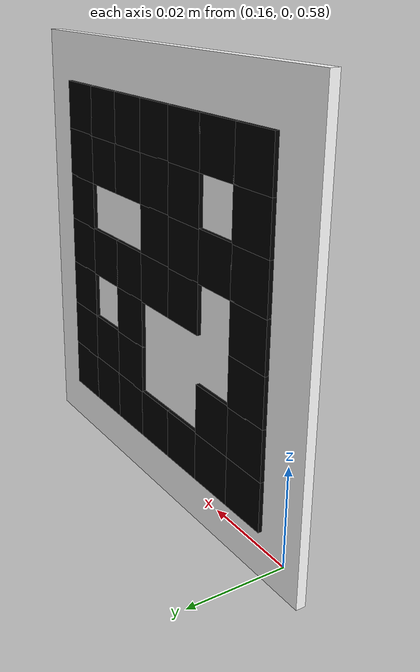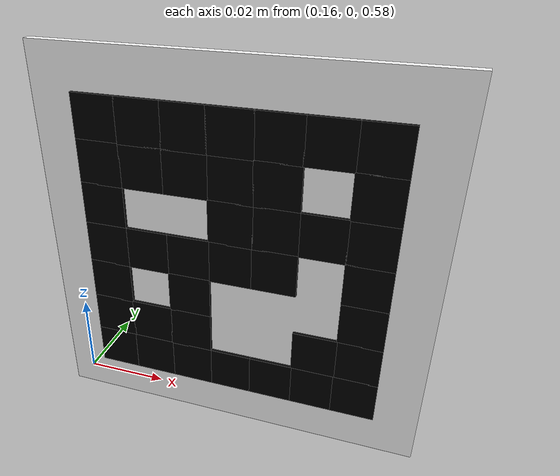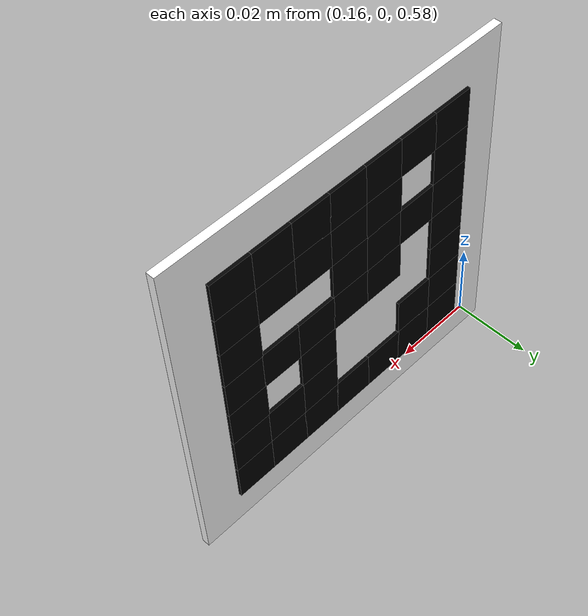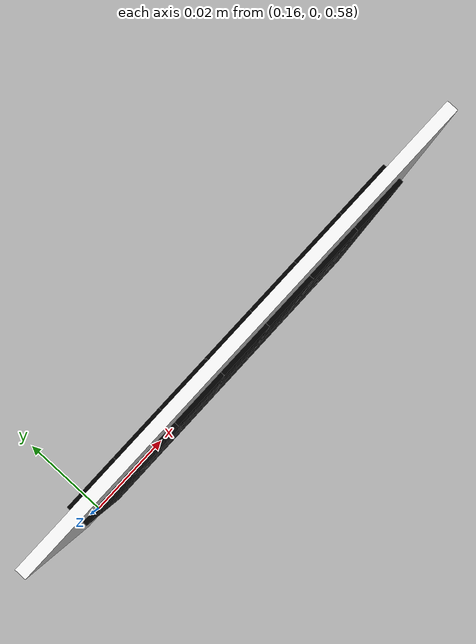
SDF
<sdf version="1.6">
  <world name="calibration">
    <include>
      <uri>model://sun</uri>
    </include>
    <include>
      <uri>model://ground_plane</uri>
    </include>
    <!-- ArUco marker: DICT_5X5_250 id=1, 90x90 mm, placed 20 cm in front of arm_mount_link at camera height -->
    <include>
      <name>aruco_marker</name>
      <pose>0.20 0 0.62 0 0 0</pose>
      <uri>model://aruco_marker</uri>
    </include>
  </world>
</sdf>

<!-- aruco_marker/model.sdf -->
<sdf version="1.6">
  <model name="aruco_5x5_250_id1">
    <static>true</static>
    <link name="board">
      <!-- DICT_5X5_250 marker id=1, borderBits=1. Rendered as geometry so Gazebo does not depend on texture/material loading. -->
      <!-- Back-side cells are mirrored in X so cameras viewing the rear face still see the canonical marker, not a mirror image. -->
      <collision name="collision">
        <geometry>
          <box>
            <size>0.09 0.002 0.09</size>
          </box>
        </geometry>
      </collision>

      <visual name="white_backing">
        <geometry>
          <box>
            <size>0.09 0.002 0.09</size>
          </box>
        </geometry>
        <material>
          <ambient>1 1 1 1</ambient>
          <diffuse>1 1 1 1</diffuse>
          <specular>0.1 0.1 0.1 1</specular>
        </material>
      </visual>

      <visual name="front_black_r0_c0">
        <pose>-0.0300 -0.0016 0.0300 0 0 0</pose>
        <geometry>
          <box>
            <size>0.0102 0.0008 0.0102</size>
          </box>
        </geometry>
        <material>
          <ambient>0 0 0 1</ambient>
          <diffuse>0 0 0 1</diffuse>
          <specular>0 0 0 1</specular>
        </material>
      </visual>
      <visual name="back_black_r0_c0_mirrored">
        <pose>0.0300 0.0016 0.0300 0 0 0</pose>
        <geometry>
          <box>
            <size>0.0102 0.0008 0.0102</size>
          </box>
        </geometry>
        <material>
          <ambient>0 0 0 1</ambient>
          <diffuse>0 0 0 1</diffuse>
          <specular>0 0 0 1</specular>
        </material>
      </visual>
      <visual name="front_black_r0_c1">
        <pose>-0.0200 -0.0016 0.0300 0 0 0</pose>
        <geometry>
          <box>
            <size>0.0102 0.0008 0.0102</size>
          </box>
        </geometry>
        <material>
          <ambient>0 0 0 1</ambient>
          <diffuse>0 0 0 1</diffuse>
          <specular>0 0 0 1</specular>
        </material>
      </visual>
      <visual name="back_black_r0_c1_mirrored">
        <pose>0.0200 0.0016 0.0300 0 0 0</pose>
        <geometry>
          <box>
            <size>0.0102 0.0008 0.0102</size>
          </box>
        </geometry>
        <material>
          <ambient>0 0 0 1</ambient>
          <diffuse>0 0 0 1</diffuse>
          <specular>0 0 0 1</specular>
        </material>
      </visual>
      <visual name="front_black_r0_c2">
        <pose>-0.0100 -0.0016 0.0300 0 0 0</pose>
        <geometry>
          <box>
            <size>0.0102 0.0008 0.0102</size>
          </box>
        </geometry>
        <material>
          <ambient>0 0 0 1</ambient>
          <diffuse>0 0 0 1</diffuse>
          <specular>0 0 0 1</specular>
        </material>
      </visual>
      <visual name="back_black_r0_c2_mirrored">
        <pose>0.0100 0.0016 0.0300 0 0 0</pose>
        <geometry>
          <box>
            <size>0.0102 0.0008 0.0102</size>
          </box>
        </geometry>
        <material>
          <ambient>0 0 0 1</ambient>
          <diffuse>0 0 0 1</diffuse>
          <specular>0 0 0 1</specular>
        </material>
      </visual>
      <visual name="front_black_r0_c3">
        <pose>0.0000 -0.0016 0.0300 0 0 0</pose>
        <geometry>
          <box>
            <size>0.0102 0.0008 0.0102</size>
          </box>
        </geometry>
        <material>
          <ambient>0 0 0 1</ambient>
          <diffuse>0 0 0 1</diffuse>
          <specular>0 0 0 1</specular>
        </material>
      </visual>
      <visual name="back_black_r0_c3_mirrored">
        <pose>0.0000 0.0016 0.0300 0 0 0</pose>
        <geometry>
          <box>
            <size>0.0102 0.0008 0.0102</size>
          </box>
        </geometry>
        <material>
          <ambient>0 0 0 1</ambient>
          <diffuse>0 0 0 1</diffuse>
          <specular>0 0 0 1</specular>
        </material>
      </visual>
      <visual name="front_black_r0_c4">
        <pose>0.0100 -0.0016 0.0300 0 0 0</pose>
        <geometry>
          <box>
            <size>0.0102 0.0008 0.0102</size>
          </box>
        </geometry>
        <material>
          <ambient>0 0 0 1</ambient>
          <diffuse>0 0 0 1</diffuse>
          <specular>0 0 0 1</specular>
        </material>
      </visual>
      <visual name="back_black_r0_c4_mirrored">
        <pose>-0.0100 0.0016 0.0300 0 0 0</pose>
        <geometry>
          <box>
            <size>0.0102 0.0008 0.0102</size>
          </box>
        </geometry>
        <material>
          <ambient>0 0 0 1</ambient>
          <diffuse>0 0 0 1</diffuse>
          <specular>0 0 0 1</specular>
        </material>
      </visual>
      <visual name="front_black_r0_c5">
        <pose>0.0200 -0.0016 0.0300 0 0 0</pose>
        <geometry>
          <box>
            <size>0.0102 0.0008 0.0102</size>
          </box>
        </geometry>
        <material>
          <ambient>0 0 0 1</ambient>
          <diffuse>0 0 0 1</diffuse>
          <specular>0 0 0 1</specular>
        </material>
      </visual>
      <visual name="back_black_r0_c5_mirrored">
        <pose>-0.0200 0.0016 0.0300 0 0 0</pose>
        <geometry>
          <box>
            <size>0.0102 0.0008 0.0102</size>
          </box>
        </geometry>
        <material>
          <ambient>0 0 0 1</ambient>
          <diffuse>0 0 0 1</diffuse>
          <specular>0 0 0 1</specular>
        </material>
      </visual>
      <visual name="front_black_r0_c6">
        <pose>0.0300 -0.0016 0.0300 0 0 0</pose>
        <geometry>
          <box>
            <size>0.0102 0.0008 0.0102</size>
          </box>
        </geometry>
        <material>
          <ambient>0 0 0 1</ambient>
          <diffuse>0 0 0 1</diffuse>
          <specular>0 0 0 1</specular>
        </material>
      </visual>
      <visual name="back_black_r0_c6_mirrored">
        <pose>-0.0300 0.0016 0.0300 0 0 0</pose>
        <geometry>
          <box>
            <size>0.0102 0.0008 0.0102</size>
          </box>
        </geometry>
        <material>
          <ambient>0 0 0 1</ambient>
          <diffuse>0 0 0 1</diffuse>
          <specular>0 0 0 1</specular>
        </material>
      </visual>
      <visual name="front_black_r1_c0">
        <pose>-0.0300 -0.0016 0.0200 0 0 0</pose>
        <geometry>
          <box>
            <size>0.0102 0.0008 0.0102</size>
          </box>
        </geometry>
        <material>
          <ambient>0 0 0 1</ambient>
          <diffuse>0 0 0 1</diffuse>
          <specular>0 0 0 1</specular>
        </material>
      </visual>
      <visual name="back_black_r1_c0_mirrored">
        <pose>0.0300 0.0016 0.0200 0 0 0</pose>
        <geometry>
          <box>
            <size>0.0102 0.0008 0.0102</size>
          </box>
        </geometry>
        <material>
          <ambient>0 0 0 1</ambient>
          <diffuse>0 0 0 1</diffuse>
          <specular>0 0 0 1</specular>
        </material>
      </visual>
      <visual name="front_black_r1_c1">
        <pose>-0.0200 -0.0016 0.0200 0 0 0</pose>
        <geometry>
          <box>
            <size>0.0102 0.0008 0.0102</size>
          </box>
        </geometry>
        <material>
          <ambient>0 0 0 1</ambient>
          <diffuse>0 0 0 1</diffuse>
          <specular>0 0 0 1</specular>
        </material>
      </visual>
      <visual name="back_black_r1_c1_mirrored">
        <pose>0.0200 0.0016 0.0200 0 0 0</pose>
        <geometry>
          <box>
            <size>0.0102 0.0008 0.0102</size>
          </box>
        </geometry>
        <material>
          <ambient>0 0 0 1</ambient>
          <diffuse>0 0 0 1</diffuse>
          <specular>0 0 0 1</specular>
        </material>
      </visual>
      <visual name="front_black_r1_c2">
        <pose>-0.0100 -0.0016 0.0200 0 0 0</pose>
        <geometry>
          <box>
            <size>0.0102 0.0008 0.0102</size>
          </box>
        </geometry>
        <material>
          <ambient>0 0 0 1</ambient>
          <diffuse>0 0 0 1</diffuse>
          <specular>0 0 0 1</specular>
        </material>
      </visual>
      <visual name="back_black_r1_c2_mirrored">
        <pose>0.0100 0.0016 0.0200 0 0 0</pose>
        <geometry>
          <box>
            <size>0.0102 0.0008 0.0102</size>
          </box>
        </geometry>
        <material>
          <ambient>0 0 0 1</ambient>
          <diffuse>0 0 0 1</diffuse>
          <specular>0 0 0 1</specular>
        </material>
      </visual>
      <visual name="front_black_r1_c3">
        <pose>0.0000 -0.0016 0.0200 0 0 0</pose>
        <geometry>
          <box>
            <size>0.0102 0.0008 0.0102</size>
          </box>
        </geometry>
        <material>
          <ambient>0 0 0 1</ambient>
          <diffuse>0 0 0 1</diffuse>
          <specular>0 0 0 1</specular>
        </material>
      </visual>
      <visual name="back_black_r1_c3_mirrored">
        <pose>0.0000 0.0016 0.0200 0 0 0</pose>
        <geometry>
          <box>
            <size>0.0102 0.0008 0.0102</size>
          </box>
        </geometry>
        <material>
          <ambient>0 0 0 1</ambient>
          <diffuse>0 0 0 1</diffuse>
          <specular>0 0 0 1</specular>
        </material>
      </visual>
      <visual name="front_black_r1_c4">
        <pose>0.0100 -0.0016 0.0200 0 0 0</pose>
        <geometry>
          <box>
            <size>0.0102 0.0008 0.0102</size>
          </box>
        </geometry>
        <material>
          <ambient>0 0 0 1</ambient>
          <diffuse>0 0 0 1</diffuse>
          <specular>0 0 0 1</specular>
        </material>
      </visual>
      <visual name="back_black_r1_c4_mirrored">
        <pose>-0.0100 0.0016 0.0200 0 0 0</pose>
        <geometry>
          <box>
            <size>0.0102 0.0008 0.0102</size>
          </box>
        </geometry>
        <material>
          <ambient>0 0 0 1</ambient>
          <diffuse>0 0 0 1</diffuse>
          <specular>0 0 0 1</specular>
        </material>
      </visual>
      <visual name="front_black_r1_c6">
        <pose>0.0300 -0.0016 0.0200 0 0 0</pose>
        <geometry>
          <box>
            <size>0.0102 0.0008 0.0102</size>
          </box>
        </geometry>
        <material>
          <ambient>0 0 0 1</ambient>
          <diffuse>0 0 0 1</diffuse>
          <specular>0 0 0 1</specular>
        </material>
      </visual>
      <visual name="back_black_r1_c6_mirrored">
        <pose>-0.0300 0.0016 0.0200 0 0 0</pose>
        <geometry>
          <box>
            <size>0.0102 0.0008 0.0102</size>
          </box>
        </geometry>
        <material>
          <ambient>0 0 0 1</ambient>
          <diffuse>0 0 0 1</diffuse>
          <specular>0 0 0 1</specular>
        </material>
      </visual>
      <visual name="front_black_r2_c0">
        <pose>-0.0300 -0.0016 0.0100 0 0 0</pose>
        <geometry>
          <box>
            <size>0.0102 0.0008 0.0102</size>
          </box>
        </geometry>
        <material>
          <ambient>0 0 0 1</ambient>
          <diffuse>0 0 0 1</diffuse>
          <specular>0 0 0 1</specular>
        </material>
      </visual>
      <visual name="back_black_r2_c0_mirrored">
        <pose>0.0300 0.0016 0.0100 0 0 0</pose>
        <geometry>
          <box>
            <size>0.0102 0.0008 0.0102</size>
          </box>
        </geometry>
        <material>
          <ambient>0 0 0 1</ambient>
          <diffuse>0 0 0 1</diffuse>
          <specular>0 0 0 1</specular>
        </material>
      </visual>
      <visual name="front_black_r2_c3">
        <pose>0.0000 -0.0016 0.0100 0 0 0</pose>
        <geometry>
          <box>
            <size>0.0102 0.0008 0.0102</size>
          </box>
        </geometry>
        <material>
          <ambient>0 0 0 1</ambient>
          <diffuse>0 0 0 1</diffuse>
          <specular>0 0 0 1</specular>
        </material>
      </visual>
      <visual name="back_black_r2_c3_mirrored">
        <pose>0.0000 0.0016 0.0100 0 0 0</pose>
        <geometry>
          <box>
            <size>0.0102 0.0008 0.0102</size>
          </box>
        </geometry>
        <material>
          <ambient>0 0 0 1</ambient>
          <diffuse>0 0 0 1</diffuse>
          <specular>0 0 0 1</specular>
        </material>
      </visual>
      <visual name="front_black_r2_c4">
        <pose>0.0100 -0.0016 0.0100 0 0 0</pose>
        <geometry>
          <box>
            <size>0.0102 0.0008 0.0102</size>
          </box>
        </geometry>
        <material>
          <ambient>0 0 0 1</ambient>
          <diffuse>0 0 0 1</diffuse>
          <specular>0 0 0 1</specular>
        </material>
      </visual>
      <visual name="back_black_r2_c4_mirrored">
        <pose>-0.0100 0.0016 0.0100 0 0 0</pose>
        <geometry>
          <box>
            <size>0.0102 0.0008 0.0102</size>
          </box>
        </geometry>
        <material>
          <ambient>0 0 0 1</ambient>
          <diffuse>0 0 0 1</diffuse>
          <specular>0 0 0 1</specular>
        </material>
      </visual>
      <visual name="front_black_r2_c5">
        <pose>0.0200 -0.0016 0.0100 0 0 0</pose>
        <geometry>
          <box>
            <size>0.0102 0.0008 0.0102</size>
          </box>
        </geometry>
        <material>
          <ambient>0 0 0 1</ambient>
          <diffuse>0 0 0 1</diffuse>
          <specular>0 0 0 1</specular>
        </material>
      </visual>
      <visual name="back_black_r2_c5_mirrored">
        <pose>-0.0200 0.0016 0.0100 0 0 0</pose>
        <geometry>
          <box>
            <size>0.0102 0.0008 0.0102</size>
          </box>
        </geometry>
        <material>
          <ambient>0 0 0 1</ambient>
          <diffuse>0 0 0 1</diffuse>
          <specular>0 0 0 1</specular>
        </material>
      </visual>
      <visual name="front_black_r2_c6">
        <pose>0.0300 -0.0016 0.0100 0 0 0</pose>
        <geometry>
          <box>
            <size>0.0102 0.0008 0.0102</size>
          </box>
        </geometry>
        <material>
          <ambient>0 0 0 1</ambient>
          <diffuse>0 0 0 1</diffuse>
          <specular>0 0 0 1</specular>
        </material>
      </visual>
      <visual name="back_black_r2_c6_mirrored">
        <pose>-0.0300 0.0016 0.0100 0 0 0</pose>
        <geometry>
          <box>
            <size>0.0102 0.0008 0.0102</size>
          </box>
        </geometry>
        <material>
          <ambient>0 0 0 1</ambient>
          <diffuse>0 0 0 1</diffuse>
          <specular>0 0 0 1</specular>
        </material>
      </visual>
      <visual name="front_black_r3_c0">
        <pose>-0.0300 -0.0016 0.0000 0 0 0</pose>
        <geometry>
          <box>
            <size>0.0102 0.0008 0.0102</size>
          </box>
        </geometry>
        <material>
          <ambient>0 0 0 1</ambient>
          <diffuse>0 0 0 1</diffuse>
          <specular>0 0 0 1</specular>
        </material>
      </visual>
      <visual name="back_black_r3_c0_mirrored">
        <pose>0.0300 0.0016 0.0000 0 0 0</pose>
        <geometry>
          <box>
            <size>0.0102 0.0008 0.0102</size>
          </box>
        </geometry>
        <material>
          <ambient>0 0 0 1</ambient>
          <diffuse>0 0 0 1</diffuse>
          <specular>0 0 0 1</specular>
        </material>
      </visual>
      <visual name="front_black_r3_c1">
        <pose>-0.0200 -0.0016 0.0000 0 0 0</pose>
        <geometry>
          <box>
            <size>0.0102 0.0008 0.0102</size>
          </box>
        </geometry>
        <material>
          <ambient>0 0 0 1</ambient>
          <diffuse>0 0 0 1</diffuse>
          <specular>0 0 0 1</specular>
        </material>
      </visual>
      <visual name="back_black_r3_c1_mirrored">
        <pose>0.0200 0.0016 0.0000 0 0 0</pose>
        <geometry>
          <box>
            <size>0.0102 0.0008 0.0102</size>
          </box>
        </geometry>
        <material>
          <ambient>0 0 0 1</ambient>
          <diffuse>0 0 0 1</diffuse>
          <specular>0 0 0 1</specular>
        </material>
      </visual>
      <visual name="front_black_r3_c2">
        <pose>-0.0100 -0.0016 0.0000 0 0 0</pose>
        <geometry>
          <box>
            <size>0.0102 0.0008 0.0102</size>
          </box>
        </geometry>
        <material>
          <ambient>0 0 0 1</ambient>
          <diffuse>0 0 0 1</diffuse>
          <specular>0 0 0 1</specular>
        </material>
      </visual>
      <visual name="back_black_r3_c2_mirrored">
        <pose>0.0100 0.0016 0.0000 0 0 0</pose>
        <geometry>
          <box>
            <size>0.0102 0.0008 0.0102</size>
          </box>
        </geometry>
        <material>
          <ambient>0 0 0 1</ambient>
          <diffuse>0 0 0 1</diffuse>
          <specular>0 0 0 1</specular>
        </material>
      </visual>
      <visual name="front_black_r3_c3">
        <pose>0.0000 -0.0016 0.0000 0 0 0</pose>
        <geometry>
          <box>
            <size>0.0102 0.0008 0.0102</size>
          </box>
        </geometry>
        <material>
          <ambient>0 0 0 1</ambient>
          <diffuse>0 0 0 1</diffuse>
          <specular>0 0 0 1</specular>
        </material>
      </visual>
      <visual name="back_black_r3_c3_mirrored">
        <pose>0.0000 0.0016 0.0000 0 0 0</pose>
        <geometry>
          <box>
            <size>0.0102 0.0008 0.0102</size>
          </box>
        </geometry>
        <material>
          <ambient>0 0 0 1</ambient>
          <diffuse>0 0 0 1</diffuse>
          <specular>0 0 0 1</specular>
        </material>
      </visual>
      <visual name="front_black_r3_c4">
        <pose>0.0100 -0.0016 0.0000 0 0 0</pose>
        <geometry>
          <box>
            <size>0.0102 0.0008 0.0102</size>
          </box>
        </geometry>
        <material>
          <ambient>0 0 0 1</ambient>
          <diffuse>0 0 0 1</diffuse>
          <specular>0 0 0 1</specular>
        </material>
      </visual>
      <visual name="back_black_r3_c4_mirrored">
        <pose>-0.0100 0.0016 0.0000 0 0 0</pose>
        <geometry>
          <box>
            <size>0.0102 0.0008 0.0102</size>
          </box>
        </geometry>
        <material>
          <ambient>0 0 0 1</ambient>
          <diffuse>0 0 0 1</diffuse>
          <specular>0 0 0 1</specular>
        </material>
      </visual>
      <visual name="front_black_r3_c6">
        <pose>0.0300 -0.0016 0.0000 0 0 0</pose>
        <geometry>
          <box>
            <size>0.0102 0.0008 0.0102</size>
          </box>
        </geometry>
        <material>
          <ambient>0 0 0 1</ambient>
          <diffuse>0 0 0 1</diffuse>
          <specular>0 0 0 1</specular>
        </material>
      </visual>
      <visual name="back_black_r3_c6_mirrored">
        <pose>-0.0300 0.0016 0.0000 0 0 0</pose>
        <geometry>
          <box>
            <size>0.0102 0.0008 0.0102</size>
          </box>
        </geometry>
        <material>
          <ambient>0 0 0 1</ambient>
          <diffuse>0 0 0 1</diffuse>
          <specular>0 0 0 1</specular>
        </material>
      </visual>
      <visual name="front_black_r4_c0">
        <pose>-0.0300 -0.0016 -0.0100 0 0 0</pose>
        <geometry>
          <box>
            <size>0.0102 0.0008 0.0102</size>
          </box>
        </geometry>
        <material>
          <ambient>0 0 0 1</ambient>
          <diffuse>0 0 0 1</diffuse>
          <specular>0 0 0 1</specular>
        </material>
      </visual>
      <visual name="back_black_r4_c0_mirrored">
        <pose>0.0300 0.0016 -0.0100 0 0 0</pose>
        <geometry>
          <box>
            <size>0.0102 0.0008 0.0102</size>
          </box>
        </geometry>
        <material>
          <ambient>0 0 0 1</ambient>
          <diffuse>0 0 0 1</diffuse>
          <specular>0 0 0 1</specular>
        </material>
      </visual>
      <visual name="front_black_r4_c2">
        <pose>-0.0100 -0.0016 -0.0100 0 0 0</pose>
        <geometry>
          <box>
            <size>0.0102 0.0008 0.0102</size>
          </box>
        </geometry>
        <material>
          <ambient>0 0 0 1</ambient>
          <diffuse>0 0 0 1</diffuse>
          <specular>0 0 0 1</specular>
        </material>
      </visual>
      <visual name="back_black_r4_c2_mirrored">
        <pose>0.0100 0.0016 -0.0100 0 0 0</pose>
        <geometry>
          <box>
            <size>0.0102 0.0008 0.0102</size>
          </box>
        </geometry>
        <material>
          <ambient>0 0 0 1</ambient>
          <diffuse>0 0 0 1</diffuse>
          <specular>0 0 0 1</specular>
        </material>
      </visual>
      <visual name="front_black_r4_c6">
        <pose>0.0300 -0.0016 -0.0100 0 0 0</pose>
        <geometry>
          <box>
            <size>0.0102 0.0008 0.0102</size>
          </box>
        </geometry>
        <material>
          <ambient>0 0 0 1</ambient>
          <diffuse>0 0 0 1</diffuse>
          <specular>0 0 0 1</specular>
        </material>
      </visual>
      <visual name="back_black_r4_c6_mirrored">
        <pose>-0.0300 0.0016 -0.0100 0 0 0</pose>
        <geometry>
          <box>
            <size>0.0102 0.0008 0.0102</size>
          </box>
        </geometry>
        <material>
          <ambient>0 0 0 1</ambient>
          <diffuse>0 0 0 1</diffuse>
          <specular>0 0 0 1</specular>
        </material>
      </visual>
      <visual name="front_black_r5_c0">
        <pose>-0.0300 -0.0016 -0.0200 0 0 0</pose>
        <geometry>
          <box>
            <size>0.0102 0.0008 0.0102</size>
          </box>
        </geometry>
        <material>
          <ambient>0 0 0 1</ambient>
          <diffuse>0 0 0 1</diffuse>
          <specular>0 0 0 1</specular>
        </material>
      </visual>
      <visual name="back_black_r5_c0_mirrored">
        <pose>0.0300 0.0016 -0.0200 0 0 0</pose>
        <geometry>
          <box>
            <size>0.0102 0.0008 0.0102</size>
          </box>
        </geometry>
        <material>
          <ambient>0 0 0 1</ambient>
          <diffuse>0 0 0 1</diffuse>
          <specular>0 0 0 1</specular>
        </material>
      </visual>
      <visual name="front_black_r5_c1">
        <pose>-0.0200 -0.0016 -0.0200 0 0 0</pose>
        <geometry>
          <box>
            <size>0.0102 0.0008 0.0102</size>
          </box>
        </geometry>
        <material>
          <ambient>0 0 0 1</ambient>
          <diffuse>0 0 0 1</diffuse>
          <specular>0 0 0 1</specular>
        </material>
      </visual>
      <visual name="back_black_r5_c1_mirrored">
        <pose>0.0200 0.0016 -0.0200 0 0 0</pose>
        <geometry>
          <box>
            <size>0.0102 0.0008 0.0102</size>
          </box>
        </geometry>
        <material>
          <ambient>0 0 0 1</ambient>
          <diffuse>0 0 0 1</diffuse>
          <specular>0 0 0 1</specular>
        </material>
      </visual>
      <visual name="front_black_r5_c2">
        <pose>-0.0100 -0.0016 -0.0200 0 0 0</pose>
        <geometry>
          <box>
            <size>0.0102 0.0008 0.0102</size>
          </box>
        </geometry>
        <material>
          <ambient>0 0 0 1</ambient>
          <diffuse>0 0 0 1</diffuse>
          <specular>0 0 0 1</specular>
        </material>
      </visual>
      <visual name="back_black_r5_c2_mirrored">
        <pose>0.0100 0.0016 -0.0200 0 0 0</pose>
        <geometry>
          <box>
            <size>0.0102 0.0008 0.0102</size>
          </box>
        </geometry>
        <material>
          <ambient>0 0 0 1</ambient>
          <diffuse>0 0 0 1</diffuse>
          <specular>0 0 0 1</specular>
        </material>
      </visual>
      <visual name="front_black_r5_c5">
        <pose>0.0200 -0.0016 -0.0200 0 0 0</pose>
        <geometry>
          <box>
            <size>0.0102 0.0008 0.0102</size>
          </box>
        </geometry>
        <material>
          <ambient>0 0 0 1</ambient>
          <diffuse>0 0 0 1</diffuse>
          <specular>0 0 0 1</specular>
        </material>
      </visual>
      <visual name="back_black_r5_c5_mirrored">
        <pose>-0.0200 0.0016 -0.0200 0 0 0</pose>
        <geometry>
          <box>
            <size>0.0102 0.0008 0.0102</size>
          </box>
        </geometry>
        <material>
          <ambient>0 0 0 1</ambient>
          <diffuse>0 0 0 1</diffuse>
          <specular>0 0 0 1</specular>
        </material>
      </visual>
      <visual name="front_black_r5_c6">
        <pose>0.0300 -0.0016 -0.0200 0 0 0</pose>
        <geometry>
          <box>
            <size>0.0102 0.0008 0.0102</size>
          </box>
        </geometry>
        <material>
          <ambient>0 0 0 1</ambient>
          <diffuse>0 0 0 1</diffuse>
          <specular>0 0 0 1</specular>
        </material>
      </visual>
      <visual name="back_black_r5_c6_mirrored">
        <pose>-0.0300 0.0016 -0.0200 0 0 0</pose>
        <geometry>
          <box>
            <size>0.0102 0.0008 0.0102</size>
          </box>
        </geometry>
        <material>
          <ambient>0 0 0 1</ambient>
          <diffuse>0 0 0 1</diffuse>
          <specular>0 0 0 1</specular>
        </material>
      </visual>
      <visual name="front_black_r6_c0">
        <pose>-0.0300 -0.0016 -0.0300 0 0 0</pose>
        <geometry>
          <box>
            <size>0.0102 0.0008 0.0102</size>
          </box>
        </geometry>
        <material>
          <ambient>0 0 0 1</ambient>
          <diffuse>0 0 0 1</diffuse>
          <specular>0 0 0 1</specular>
        </material>
      </visual>
      <visual name="back_black_r6_c0_mirrored">
        <pose>0.0300 0.0016 -0.0300 0 0 0</pose>
        <geometry>
          <box>
            <size>0.0102 0.0008 0.0102</size>
          </box>
        </geometry>
        <material>
          <ambient>0 0 0 1</ambient>
          <diffuse>0 0 0 1</diffuse>
          <specular>0 0 0 1</specular>
        </material>
      </visual>
      <visual name="front_black_r6_c1">
        <pose>-0.0200 -0.0016 -0.0300 0 0 0</pose>
        <geometry>
          <box>
            <size>0.0102 0.0008 0.0102</size>
          </box>
        </geometry>
        <material>
          <ambient>0 0 0 1</ambient>
          <diffuse>0 0 0 1</diffuse>
          <specular>0 0 0 1</specular>
        </material>
      </visual>
      <visual name="back_black_r6_c1_mirrored">
        <pose>0.0200 0.0016 -0.0300 0 0 0</pose>
        <geometry>
          <box>
            <size>0.0102 0.0008 0.0102</size>
          </box>
        </geometry>
        <material>
          <ambient>0 0 0 1</ambient>
          <diffuse>0 0 0 1</diffuse>
          <specular>0 0 0 1</specular>
        </material>
      </visual>
      <visual name="front_black_r6_c2">
        <pose>-0.0100 -0.0016 -0.0300 0 0 0</pose>
        <geometry>
          <box>
            <size>0.0102 0.0008 0.0102</size>
          </box>
        </geometry>
        <material>
          <ambient>0 0 0 1</ambient>
          <diffuse>0 0 0 1</diffuse>
          <specular>0 0 0 1</specular>
        </material>
      </visual>
      <visual name="back_black_r6_c2_mirrored">
        <pose>0.0100 0.0016 -0.0300 0 0 0</pose>
        <geometry>
          <box>
            <size>0.0102 0.0008 0.0102</size>
          </box>
        </geometry>
        <material>
          <ambient>0 0 0 1</ambient>
          <diffuse>0 0 0 1</diffuse>
          <specular>0 0 0 1</specular>
        </material>
      </visual>
      <visual name="front_black_r6_c3">
        <pose>0.0000 -0.0016 -0.0300 0 0 0</pose>
        <geometry>
          <box>
            <size>0.0102 0.0008 0.0102</size>
          </box>
        </geometry>
        <material>
          <ambient>0 0 0 1</ambient>
          <diffuse>0 0 0 1</diffuse>
          <specular>0 0 0 1</specular>
        </material>
      </visual>
      <visual name="back_black_r6_c3_mirrored">
        <pose>0.0000 0.0016 -0.0300 0 0 0</pose>
        <geometry>
          <box>
            <size>0.0102 0.0008 0.0102</size>
          </box>
        </geometry>
        <material>
          <ambient>0 0 0 1</ambient>
          <diffuse>0 0 0 1</diffuse>
          <specular>0 0 0 1</specular>
        </material>
      </visual>
      <visual name="front_black_r6_c4">
        <pose>0.0100 -0.0016 -0.0300 0 0 0</pose>
        <geometry>
          <box>
            <size>0.0102 0.0008 0.0102</size>
          </box>
        </geometry>
        <material>
          <ambient>0 0 0 1</ambient>
          <diffuse>0 0 0 1</diffuse>
          <specular>0 0 0 1</specular>
        </material>
      </visual>
      <visual name="back_black_r6_c4_mirrored">
        <pose>-0.0100 0.0016 -0.0300 0 0 0</pose>
        <geometry>
          <box>
            <size>0.0102 0.0008 0.0102</size>
          </box>
        </geometry>
        <material>
          <ambient>0 0 0 1</ambient>
          <diffuse>0 0 0 1</diffuse>
          <specular>0 0 0 1</specular>
        </material>
      </visual>
      <visual name="front_black_r6_c5">
        <pose>0.0200 -0.0016 -0.0300 0 0 0</pose>
        <geometry>
          <box>
            <size>0.0102 0.0008 0.0102</size>
          </box>
        </geometry>
        <material>
          <ambient>0 0 0 1</ambient>
          <diffuse>0 0 0 1</diffuse>
          <specular>0 0 0 1</specular>
        </material>
      </visual>
      <visual name="back_black_r6_c5_mirrored">
        <pose>-0.0200 0.0016 -0.0300 0 0 0</pose>
        <geometry>
          <box>
            <size>0.0102 0.0008 0.0102</size>
          </box>
        </geometry>
        <material>
          <ambient>0 0 0 1</ambient>
          <diffuse>0 0 0 1</diffuse>
          <specular>0 0 0 1</specular>
        </material>
      </visual>
      <visual name="front_black_r6_c6">
        <pose>0.0300 -0.0016 -0.0300 0 0 0</pose>
        <geometry>
          <box>
            <size>0.0102 0.0008 0.0102</size>
          </box>
        </geometry>
        <material>
          <ambient>0 0 0 1</ambient>
          <diffuse>0 0 0 1</diffuse>
          <specular>0 0 0 1</specular>
        </material>
      </visual>
      <visual name="back_black_r6_c6_mirrored">
        <pose>-0.0300 0.0016 -0.0300 0 0 0</pose>
        <geometry>
          <box>
            <size>0.0102 0.0008 0.0102</size>
          </box>
        </geometry>
        <material>
          <ambient>0 0 0 1</ambient>
          <diffuse>0 0 0 1</diffuse>
          <specular>0 0 0 1</specular>
        </material>
      </visual>
    </link>
  </model>
</sdf>
